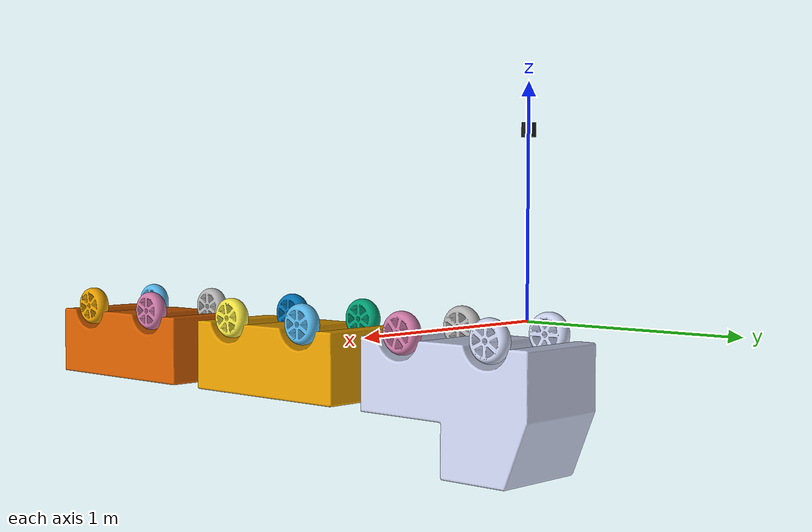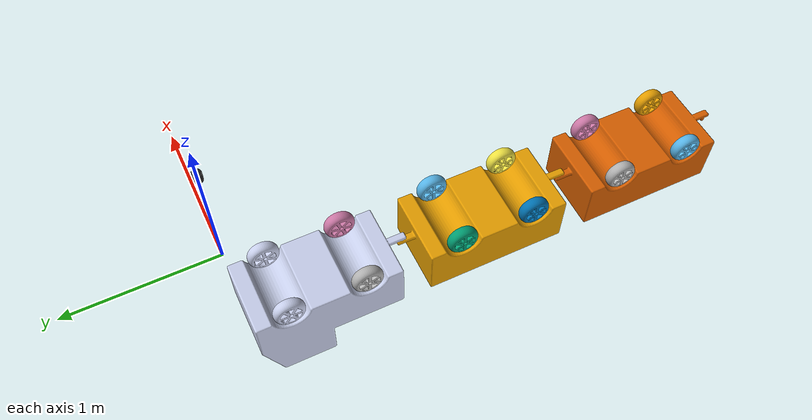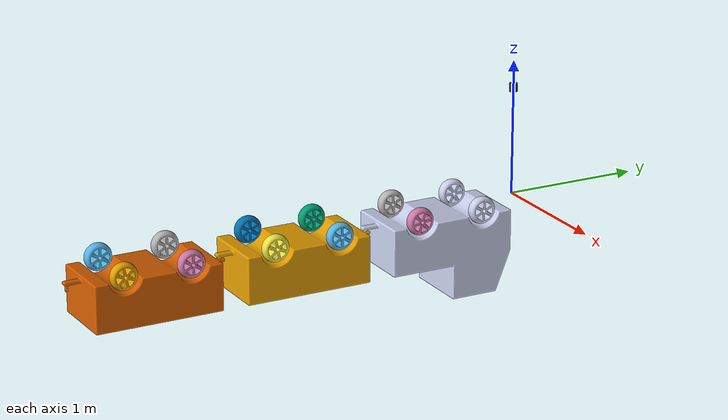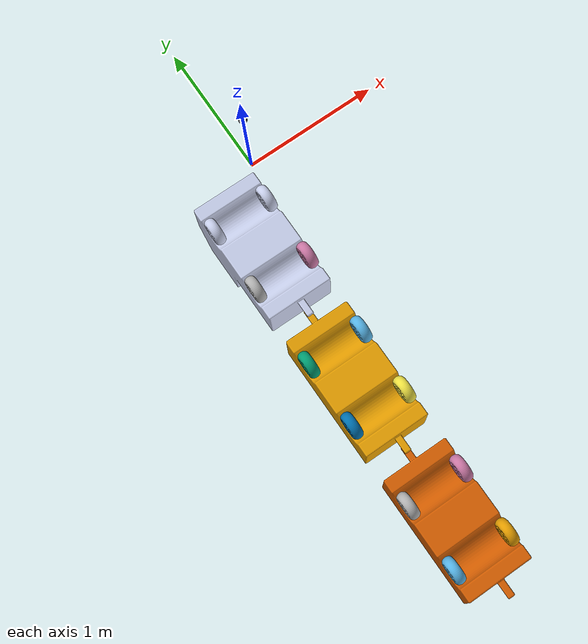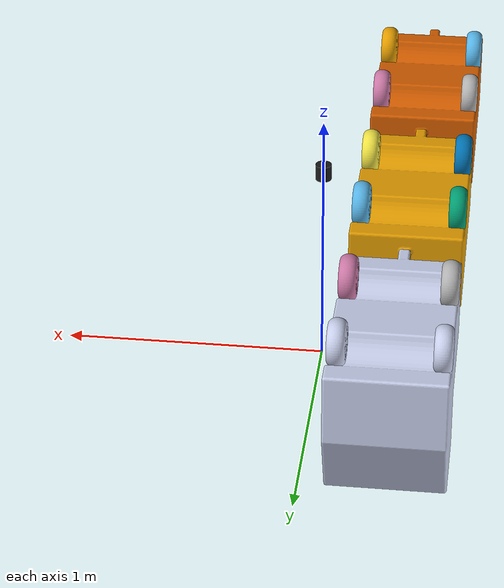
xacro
<?xml version="1.0"?>
<robot name="truck_urdf" xmlns:xacro="http://ros.org/wiki/xacro">

  <!-- ===== dummy static tf anchor (map -> dummy_link) ===== -->
  <link name="dummy_link">
    <inertial>
      <origin xyz="0 0 0" rpy="0 0 0"/>
      <mass value="0.01"/>
      <inertia ixx="1e-5" iyy="1e-5" izz="1e-5" ixy="0" ixz="0" iyz="0"/>
    </inertial>
  </link>
  <joint name="dummy_joint" type="fixed">
    <origin xyz="0 0 0" rpy="0 0 0"/>
    <parent link="dummy_link"/>
    <child link="base_link"/>
  </joint>

  <!-- ===== base_link ===== -->
  <link name="base_link">
    <inertial>
      <origin xyz="-0.254000016680143 -0.429384963721556 -0.393680147234163" rpy="0 0 0"/>
      <mass value="207.768846555119"/>
      <inertia ixx="19.5962917065594" ixy="-8.19943544895025E-07" ixz="-3.27401357177382E-07"
               iyy="9.3529571029121"  iyz="2.3242716663183"  izz="19.1468681302977"/>
    </inertial>
    <visual>
      <origin xyz="0 0 0" rpy="0 0 0"/>
      <geometry><mesh filename="package://project1phase1/meshes/base_link.STL"/></geometry>
      <material name="base_mat"><color rgba="0.79 0.82 0.93 1"/></material>
    </visual>
    <collision>
      <origin xyz="0 0 0" rpy="0 0 0"/>
      <geometry><mesh filename="package://project1phase1/meshes/base_link.STL"/></geometry>
    </collision>
  </link>

  <!-- ===== FRONT AXLE (steer + free axle roll per wheel) ===== -->
  <!-- FL hub has inertial so Gazebo keeps the joint -->
  <link name="wheel_fl_hub">
    <inertial>
      <origin xyz="0 0 0" rpy="0 0 0"/>
      <mass value="0.01"/>
      <inertia ixx="1e-5" iyy="1e-5" izz="1e-5" ixy="0" ixz="0" iyz="0"/>
    </inertial>
  </link>
  <joint name="wheel_fl_steer" type="revolute">
    <origin xyz="-0.0381 -0.2286 -0.1016" rpy="3.14159265358979 0 0"/>
    <parent link="base_link"/>
    <child  link="wheel_fl_hub"/>
    <axis xyz="0 0 -1"/>
    <limit lower="-0.65" upper="0.65" effort="50.0" velocity="2.0"/>
    <dynamics damping="0.1"/>
  </joint>

  <link name="wheel_fl">
    <inertial>
      <origin xyz="0 0 0" rpy="0 0 0"/>
      <mass value="1.5815"/>
      <inertia ixx="0.00863" iyy="0.00497" izz="0.00497" ixy="0" ixz="0" iyz="0"/>
    </inertial>
    <visual>
      <origin xyz="0 0 0" rpy="0 0 0"/>
      <geometry><mesh filename="package://project1phase1/meshes/wheel_fl.STL"/></geometry>
      <material name="wheel_fl_mat"><color rgba="0.79 0.82 0.93 1"/></material>
    </visual>
    <collision>
      <!-- cylinder axis (Z) rotated to align with axle X -->
      <origin xyz="0 0 0" rpy="0 1.57079632679 0"/>
      <geometry><cylinder radius="0.17" length="0.06"/></geometry>
      <surface>
        <contact><ode><kp>1e6</kp><kd>1.0</kd><max_vel>0.2</max_vel><min_depth>0.001</min_depth></ode></contact>
        <friction><ode><mu>2.0</mu><mu2>2.0</mu2><slip1>0.05</slip1><slip2>0.05</slip2></ode></friction>
      </surface>
    </collision>
  </link>
  <joint name="wheel_fl_axle" type="continuous">
    <origin xyz="0 0 0" rpy="0 0 0"/>
    <parent link="wheel_fl_hub"/>
    <child  link="wheel_fl"/>
    <axis xyz="1 0 0"/>
    <dynamics damping="0.05"/>
  </joint>

  <link name="wheel_fr_hub">
    <inertial>
      <origin xyz="0 0 0" rpy="0 0 0"/>
      <mass value="0.01"/>
      <inertia ixx="1e-5" iyy="1e-5" izz="1e-5" ixy="0" ixz="0" iyz="0"/>
    </inertial>
  </link>
  <joint name="wheel_fr_steer" type="revolute">
    <origin xyz="-0.4699 -0.2286 -0.1016" rpy="3.14159265358979 0 0"/>
    <parent link="base_link"/>
    <child  link="wheel_fr_hub"/>
    <axis xyz="0 0 -1"/>
    <limit lower="-0.65" upper="0.65" effort="50.0" velocity="2.0"/>
    <dynamics damping="0.1"/>
  </joint>

  <link name="wheel_fr">
    <inertial>
      <origin xyz="0 0 0" rpy="0 0 0"/>
      <mass value="1.5815"/>
      <inertia ixx="0.00863" iyy="0.00497" izz="0.00497" ixy="0" ixz="0" iyz="0"/>
    </inertial>
    <visual>
      <origin xyz="0 0 0" rpy="0 0 0"/>
      <geometry><mesh filename="package://project1phase1/meshes/wheel_fr.STL"/></geometry>
      <material name="wheel_fr_mat"><color rgba="0.79 0.82 0.93 1"/></material>
    </visual>
    <collision>
      <origin xyz="0 0 0" rpy="0 1.57079632679 0"/>
      <geometry><cylinder radius="0.17" length="0.06"/></geometry>
      <surface>
        <contact><ode><kp>1e6</kp><kd>1.0</kd><max_vel>0.2</max_vel><min_depth>0.001</min_depth></ode></contact>
        <friction><ode><mu>2.0</mu><mu2>2.0</mu2><slip1>0.05</slip1><slip2>0.05</slip2></ode></friction>
      </surface>
    </collision>
  </link>
  <joint name="wheel_fr_axle" type="continuous">
    <origin xyz="0 0 0" rpy="0 0 0"/>
    <parent link="wheel_fr_hub"/>
    <child  link="wheel_fr"/>
    <axis xyz="1 0 0"/>
    <dynamics damping="0.05"/>
  </joint>

  <!-- ===== REAR DRIVE WHEELS (continuous on X) ===== -->
  <link name="wheel_bl">
    <inertial>
      <origin xyz="0 0 0" rpy="0 0 0"/>
      <mass value="1.5815"/>
      <inertia ixx="0.00863" iyy="0.00497" izz="0.00497" ixy="0" ixz="0" iyz="0"/>
    </inertial>
    <visual><origin xyz="0 0 0" rpy="0 0 0"/><geometry>
      <mesh filename="package://project1phase1/meshes/wheel_bl.STL"/></geometry></visual>
    <collision>
      <origin xyz="0 0 0" rpy="0 1.57079632679 0"/>
      <geometry><cylinder radius="0.17" length="0.06"/></geometry>
      <surface>
        <contact><ode><kp>1e6</kp><kd>1.0</kd><max_vel>0.2</max_vel><min_depth>0.001</min_depth></ode></contact>
        <friction><ode><mu>3.0</mu><mu2>3.0</mu2><slip1>0.02</slip1><slip2>0.02</slip2></ode></friction>
      </surface>
    </collision>
  </link>
  <joint name="joint_bl" type="continuous">
    <origin xyz="-0.0381 -0.7366 -0.1016" rpy="3.14159265358979 0 0"/>
    <parent link="base_link"/>
    <child  link="wheel_bl"/>
    <axis xyz="1 0 0"/>
    <dynamics damping="0.1"/>
  </joint>

  <link name="wheel_br">
    <inertial>
      <origin xyz="0 0 0" rpy="0 0 0"/>
      <mass value="1.5815"/>
      <inertia ixx="0.00863" iyy="0.00497" izz="0.00497" ixy="0" ixz="0" iyz="0"/>
    </inertial>
    <visual><origin xyz="0 0 0" rpy="0 0 0"/><geometry>
      <mesh filename="package://project1phase1/meshes/wheel_br.STL"/></geometry></visual>
    <collision>
      <origin xyz="0 0 0" rpy="0 1.57079632679 0"/>
      <geometry><cylinder radius="0.17" length="0.06"/></geometry>
      <surface>
        <contact><ode><kp>1e6</kp><kd>1.0</kd><max_vel>0.2</max_vel><min_depth>0.001</min_depth></ode></contact>
        <friction><ode><mu>3.0</mu><mu2>3.0</mu2><slip1>0.02</slip1><slip2>0.02</slip2></ode></friction>
      </surface>
    </collision>
  </link>
  <joint name="joint_br" type="continuous">
    <origin xyz="-0.4699 -0.7366 -0.1016" rpy="3.14159265358979 0 0"/>
    <parent link="base_link"/>
    <child  link="wheel_br"/>
    <axis xyz="1 0 0"/>
    <dynamics damping="0.1"/>
  </joint>

  <!-- ===== FIRST TRAILER (hitch fixed) ===== -->
  <link name="trailer">
    <inertial>
      <origin xyz="3.69323682747336E-10 0.571256988776015 0.117353006753824" rpy="0 0 0"/>
      <mass value="95.484741148508"/>
      <inertia ixx="13.6421910845191" ixy="-2.48524307383535E-09" ixz="6.24243486154171E-09"
               iyy="4.71963963467751"  iyz="0.00663582007885279"  izz="15.5438252225012"/>
    </inertial>
    <visual><origin xyz="0 0 0" rpy="0 0 0"/><geometry>
      <mesh filename="package://project1phase1/meshes/trailer.STL"/></geometry></visual>
    <collision><origin xyz="0 0 0" rpy="0 0 0"/><geometry>
      <mesh filename="package://project1phase1/meshes/trailer.STL"/></geometry></collision>
  </link>
  <joint name="hitch" type="revolute">
  <!-- keep your original pose -->
  <origin xyz="-0.254000000000682 -1.06680000000062 -0.20320000000001"
          rpy="-3.14159265358979 0 0"/>
  <parent link="base_link"/>
  <child  link="trailer"/>
  <!-- yaw axis -->
  <axis xyz="0 0 1"/>
  <!-- turn limits (tweak as you like) -->
  <limit lower="-1.5" upper="1.5" effort="500.0" velocity="3.0"/>
  <!-- add some damping so it’s stable -->
  <dynamics damping="1.0" friction="0.0"/>
  </joint>

  <!-- Trailer wheels: all free-rolling (continuous, axle along X) -->
  <link name="wheel_tfl">
    <inertial><origin xyz="0 0 0" rpy="0 0 0"/><mass value="1.5815"/>
      <inertia ixx="0.00863" iyy="0.00497" izz="0.00497" ixy="0" ixz="0" iyz="0"/></inertial>
    <visual><origin xyz="0 0 0" rpy="0 0 0"/><geometry>
      <mesh filename="package://project1phase1/meshes/wheel_tfl.STL"/></geometry></visual>
    <collision>
      <origin xyz="0 0 0" rpy="0 1.57079632679 0"/>
      <geometry><cylinder radius="0.17" length="0.06"/></geometry>
      <surface>
        <contact><ode><kp>5e5</kp><kd>5.0</kd><max_vel>0.5</max_vel><min_depth>0.001</min_depth></ode></contact>
        <friction><ode><mu>0.8</mu><mu2>0.3</mu2><slip1>0.1</slip1><slip2>0.1</slip2></ode></friction>
      </surface>
    </collision>
  </link>
  <joint name="joint_tfl" type="continuous">
    <origin xyz="0.2159 0.31706871138665 -0.1016" rpy="0 0 0"/>
    <parent link="trailer"/><child link="wheel_tfl"/>
    <axis xyz="1 0 0"/><dynamics damping="0.05"/>
  </joint>

  <link name="wheel_tfr">
    <inertial><origin xyz="0 0 0" rpy="0 0 0"/><mass value="1.5815"/>
      <inertia ixx="0.00863" iyy="0.00497" izz="0.00497" ixy="0" ixz="0" iyz="0"/></inertial>
    <visual><origin xyz="0 0 0" rpy="0 0 0"/><geometry>
      <mesh filename="package://project1phase1/meshes/wheel_tfr.STL"/></geometry></visual>
    <collision>
      <origin xyz="0 0 0" rpy="0 1.57079632679 0"/>
      <geometry><cylinder radius="0.17" length="0.06"/></geometry>
      <surface>
        <contact><ode><kp>5e5</kp><kd>5.0</kd><max_vel>0.5</max_vel><min_depth>0.001</min_depth></ode></contact>
        <friction><ode><mu>0.8</mu><mu2>0.3</mu2><slip1>0.1</slip1><slip2>0.1</slip2></ode></friction>
      </surface>
    </collision>
  </link>
  <joint name="joint_tfr" type="continuous">
    <origin xyz="-0.2159 0.31706871138665 -0.1016" rpy="0 0 0"/>
    <parent link="trailer"/><child link="wheel_tfr"/>
    <axis xyz="1 0 0"/><dynamics damping="0.05"/>
  </joint>

  <link name="wheel_tbl">
    <inertial><origin xyz="0 0 0" rpy="0 0 0"/><mass value="1.5815"/>
      <inertia ixx="0.00863" iyy="0.00497" izz="0.00497" ixy="0" ixz="0" iyz="0"/></inertial>
    <visual><origin xyz="0 0 0" rpy="0 0 0"/><geometry>
      <mesh filename="package://project1phase1/meshes/wheel_tbl.STL"/></geometry></visual>
    <collision>
      <origin xyz="0 0 0" rpy="0 1.57079632679 0"/>
      <geometry><cylinder radius="0.17" length="0.06"/></geometry>
      <surface>
        <contact><ode><kp>5e5</kp><kd>5.0</kd><max_vel>0.5</max_vel><min_depth>0.001</min_depth></ode></contact>
        <friction><ode><mu>0.8</mu><mu2>0.3</mu2><slip1>0.1</slip1><slip2>0.1</slip2></ode></friction>
      </surface>
    </collision>
  </link>
  <joint name="joint_tbl" type="continuous">
    <origin xyz="0.2159 0.82506871138665 -0.1016" rpy="0 0 0"/>
    <parent link="trailer"/><child link="wheel_tbl"/>
    <axis xyz="1 0 0"/><dynamics damping="0.05"/>
  </joint>

  <link name="wheel_tbr">
    <inertial><origin xyz="0 0 0" rpy="0 0 0"/><mass value="1.5815"/>
      <inertia ixx="0.00863" iyy="0.00497" izz="0.00497" ixy="0" ixz="0" iyz="0"/></inertial>
    <visual><origin xyz="0 0 0" rpy="0 0 0"/><geometry>
      <mesh filename="package://project1phase1/meshes/wheel_tbr.STL"/></geometry></visual>
    <collision>
      <origin xyz="0 0 0" rpy="0 1.57079632679 0"/>
      <geometry><cylinder radius="0.17" length="0.06"/></geometry>
      <surface>
        <contact><ode><kp>5e5</kp><kd>5.0</kd><max_vel>0.5</max_vel><min_depth>0.001</min_depth></ode></contact>
        <friction><ode><mu>0.8</mu><mu2>0.3</mu2><slip1>0.1</slip1><slip2>0.1</slip2></ode></friction>
      </surface>
    </collision>
  </link>
  <joint name="joint_tbr" type="continuous">
    <origin xyz="-0.2159 0.82506871138665 -0.1016" rpy="0 0 0"/>
    <parent link="trailer"/><child link="wheel_tbr"/>
    <axis xyz="1 0 0"/><dynamics damping="0.05"/>
  </joint>

  <!-- ===== BACK TRAILER (fixed to front trailer) ===== -->
  <link name="back_trailer">
    <inertial>
      <origin xyz="3.6686853555068E-10 0.571256988777377 0.117353006753846" rpy="0 0 0"/>
      <mass value="95.484741148483"/>
      <inertia ixx="13.6421910845091" ixy="-2.52925029141024E-09" ixz="6.24522738612748E-09"
               iyy="4.71963963467603"  iyz="0.00663582007955939"  izz="15.5438252224907"/>
    </inertial>
    <visual><origin xyz="0 0 0" rpy="0 0 0"/><geometry>
      <mesh filename="package://project1phase1/meshes/back_trailer.STL"/></geometry></visual>
    <collision><origin xyz="0 0 0" rpy="0 0 0"/><geometry>
      <mesh filename="package://project1phase1/meshes/back_trailer.STL"/></geometry></collision>
  </link>
  <joint name="back_hitch" type="revolute">
  <origin xyz="0 1.15526871138527 0" rpy="0 0 0"/>
  <parent link="trailer"/>
  <child  link="back_trailer"/>
  <axis xyz="0 0 1"/>
  <limit lower="-1.5" upper="1.5" effort="500.0" velocity="3.0"/>
  <dynamics damping="1.0" friction="0.0"/>
  </joint>

  <!-- Back trailer wheels: free-rolling -->
  <link name="wheel_bfl">
    <inertial><origin xyz="0 0 0" rpy="0 0 0"/><mass value="1.5815"/>
      <inertia ixx="0.00863" iyy="0.00497" izz="0.00497" ixy="0" ixz="0" iyz="0"/></inertial>
    <visual><origin xyz="0 0 0" rpy="0 0 0"/><geometry>
      <mesh filename="package://project1phase1/meshes/wheel_bfl.STL"/></geometry></visual>
    <collision>
      <origin xyz="0 0 0" rpy="0 1.57079632679 0"/>
      <geometry><cylinder radius="0.17" length="0.06"/></geometry>
      <surface>
        <contact><ode><kp>5e5</kp><kd>5.0</kd><max_vel>0.5</max_vel><min_depth>0.001</min_depth></ode></contact>
        <friction><ode><mu>0.8</mu><mu2>0.3</mu2><slip1>0.1</slip1><slip2>0.1</slip2></ode></friction>
      </surface>
    </collision>
  </link>
  <joint name="joint_bfl" type="continuous">
    <origin xyz="0.2159 0.31706871138665 -0.1016" rpy="0 0 0"/>
    <parent link="back_trailer"/><child link="wheel_bfl"/>
    <axis xyz="1 0 0"/><dynamics damping="0.05"/>
  </joint>

  <link name="wheel_bfr">
    <inertial><origin xyz="0 0 0" rpy="0 0 0"/><mass value="1.5815"/>
      <inertia ixx="0.00863" iyy="0.00497" izz="0.00497" ixy="0" ixz="0" iyz="0"/></inertial>
    <visual><origin xyz="0 0 0" rpy="0 0 0"/><geometry>
      <mesh filename="package://project1phase1/meshes/wheel_bfr.STL"/></geometry></visual>
    <collision>
      <origin xyz="0 0 0" rpy="0 1.57079632679 0"/>
      <geometry><cylinder radius="0.17" length="0.06"/></geometry>
      <surface>
        <contact><ode><kp>5e5</kp><kd>5.0</kd><max_vel>0.5</max_vel><min_depth>0.001</min_depth></ode></contact>
        <friction><ode><mu>0.8</mu><mu2>0.3</mu2><slip1>0.1</slip1><slip2>0.1</slip2></ode></friction>
      </surface>
    </collision>
  </link>
  <joint name="joint_bfr" type="continuous">
    <origin xyz="-0.2159 0.31706871138665 -0.1016" rpy="0 0 0"/>
    <parent link="back_trailer"/><child link="wheel_bfr"/>
    <axis xyz="1 0 0"/><dynamics damping="0.05"/>
  </joint>

  <link name="wheel_bbl">
    <inertial><origin xyz="0 0 0" rpy="0 0 0"/><mass value="1.5815"/>
      <inertia ixx="0.00863" iyy="0.00497" izz="0.00497" ixy="0" ixz="0" iyz="0"/></inertial>
    <visual><origin xyz="0 0 0" rpy="0 0 0"/><geometry>
      <mesh filename="package://project1phase1/meshes/wheel_bbl.STL"/></geometry></visual>
    <collision>
      <origin xyz="0 0 0" rpy="0 1.57079632679 0"/>
      <geometry><cylinder radius="0.17" length="0.06"/></geometry>
      <surface>
        <contact><ode><kp>5e5</kp><kd>5.0</kd><max_vel>0.5</max_vel><min_depth>0.001</min_depth></ode></contact>
        <friction><ode><mu>0.8</mu><mu2>0.3</mu2><slip1>0.1</slip1><slip2>0.1</slip2></ode></friction>
      </surface>
    </collision>
  </link>
  <joint name="joint_bbl" type="continuous">
    <origin xyz="0.2159 0.82506871138665 -0.1016" rpy="0 0 0"/>
    <parent link="back_trailer"/><child link="wheel_bbl"/>
    <axis xyz="1 0 0"/><dynamics damping="0.05"/>
  </joint>

  <link name="wheel_bbr">
    <inertial><origin xyz="0 0 0" rpy="0 0 0"/><mass value="1.5815"/>
      <inertia ixx="0.00863" iyy="0.00497" izz="0.00497" ixy="0" ixz="0" iyz="0"/></inertial>
    <visual><origin xyz="0 0 0" rpy="0 0 0"/><geometry>
      <mesh filename="package://project1phase1/meshes/wheel_bbr.STL"/></geometry></visual>
    <collision>
      <origin xyz="0 0 0" rpy="0 1.57079632679 0"/>
      <geometry><cylinder radius="0.17" length="0.06"/></geometry>
      <surface>
        <contact><ode><kp>5e5</kp><kd>5.0</kd><max_vel>0.5</max_vel><min_depth>0.001</min_depth></ode></contact>
        <friction><ode><mu>0.8</mu><mu2>0.3</mu2><slip1>0.1</slip1><slip2>0.1</slip2></ode></friction>
      </surface>
    </collision>
  </link>
  <joint name="joint_bbr" type="continuous">
    <origin xyz="-0.2159 0.82506871138665 -0.1016" rpy="0 0 0"/>
    <parent link="back_trailer"/><child link="wheel_bbr"/>
    <axis xyz="1 0 0"/><dynamics damping="0.05"/>
  </joint>

<!-- ===== LiDAR Mount ===== -->
<link name="lidar_link">
  <inertial>
    <origin xyz="0 0 0" rpy="0 0 0"/>
    <mass value="0.05"/>
    <inertia ixx="1e-5" iyy="1e-5" izz="1e-5" ixy="0" ixz="0" iyz="0"/>
  </inertial>

  <visual>
    <!-- A small cylindrical LiDAR body -->
    <origin xyz="0 0 0" rpy="0 0 0"/>
    <geometry>
      <cylinder radius="0.03" length="0.06"/>
    </geometry>
    <material name="lidar_mat"><color rgba="0.1 0.1 0.1 1.0"/></material>
  </visual>
</link>

<!-- Mount joint (LiDAR sitting on top front of chassis) -->
<joint name="lidar_mount" type="fixed">
  <!-- Shift slightly forward and upward -->
  <origin xyz="0 0.0 0.8" rpy="0 0 0"/>
  <parent link="base_link"/>
  <child link="lidar_link"/>
</joint>

<!-- ===== Gazebo LiDAR sensor plugin ===== -->
<gazebo reference="lidar_link">
  <sensor name="lidar" type="ray">
    <!-- Adjusted pose -->
    <pose>0 0 0 0 0 0</pose>

    <always_on>true</always_on>
    <visualize>true</visualize>
    <update_rate>10</update_rate>

    <ray>
      <scan>
        <horizontal>
          <samples>360</samples>
          <resolution>1.0</resolution>
          <min_angle>0.0</min_angle>
          <max_angle>6.28319</max_angle>
        </horizontal>
      </scan>
      <range>
        <min>0.12</min>
        <max>10.0</max>
        <resolution>0.015</resolution>
      </range>
      <noise>
        <type>gaussian</type>
        <mean>0.0</mean>
        <stddev>0.01</stddev>
      </noise>
    </ray>

    <plugin name="gazebo_ros_laser" filename="libgazebo_ros_ray_sensor.so">
      <ros>
        <remapping>~/out:=scan</remapping>
      </ros>
      <output_type>sensor_msgs/LaserScan</output_type>
      <frame_name>lidar_link</frame_name>
    </plugin>
  </sensor>
</gazebo>

  <!-- ===== ros2_control (only controllable joints) ===== -->
  <ros2_control name="GazeboSystem" type="system">
    <hardware><plugin>gazebo_ros2_control/GazeboSystem</plugin></hardware>

    <!-- rear velocity control -->
    <joint name="joint_bl">
      <command_interface name="velocity"><param name="min">-1000.0</param><param name="max">1000.0</param></command_interface>
      <state_interface name="position"/><state_interface name="velocity"/>
    </joint>
    <joint name="joint_br">
      <command_interface name="velocity"><param name="min">-1000.0</param><param name="max">1000.0</param></command_interface>
      <state_interface name="position"/><state_interface name="velocity"/>
    </joint>

    <!-- front steering position control -->
    <joint name="wheel_fl_steer">
      <command_interface name="position"><param name="min">-3.14</param><param name="max">3.14</param></command_interface>
      <state_interface name="position"/><state_interface name="velocity"/>
    </joint>
    <joint name="wheel_fr_steer">
      <command_interface name="position"><param name="min">-3.14</param><param name="max">3.14</param></command_interface>
      <state_interface name="position"/><state_interface name="velocity"/>
    </joint>
  </ros2_control>

  <gazebo>
    <plugin name="gazebo_ros2_control" filename="libgazebo_ros2_control.so">
      <parameters>$(find project1phase1)/config/control.yaml</parameters>
    </plugin>
  </gazebo>

  <!-- ===== Ground-truth odometry plugin (p3d) ===== -->
  <gazebo>
    <plugin name="p3d_base_controller" filename="libgazebo_ros_p3d.so">
      <!-- ROS 2 namespace + topic remap -->
      <ros>
        <!-- keep at root ns -->
        <namespace>/</namespace>
        <!-- p3d publishes "odom" by default; this line is optional but explicit -->
        <remapping>odom:=odom</remapping>
      </ros>

      <!-- IMPORTANT: this must be the actual Gazebo body name -->
      <body_name>dummy_link</body_name>

      <!-- TF frame that /odom is expressed in -->
      <frame_name>map</frame_name>

      <update_rate>50.0</update_rate>
      <gaussian_noise>0.01</gaussian_noise>
      <xyz_offsets>0 0 0</xyz_offsets>
      <rpy_offsets>0 0 0</rpy_offsets>
    </plugin>
  </gazebo>

</robot>
